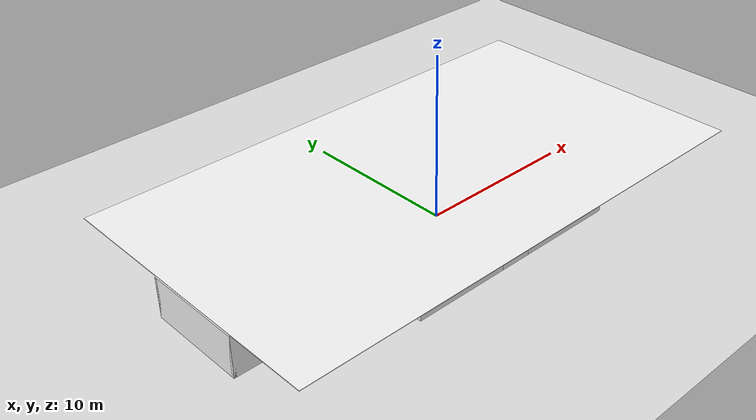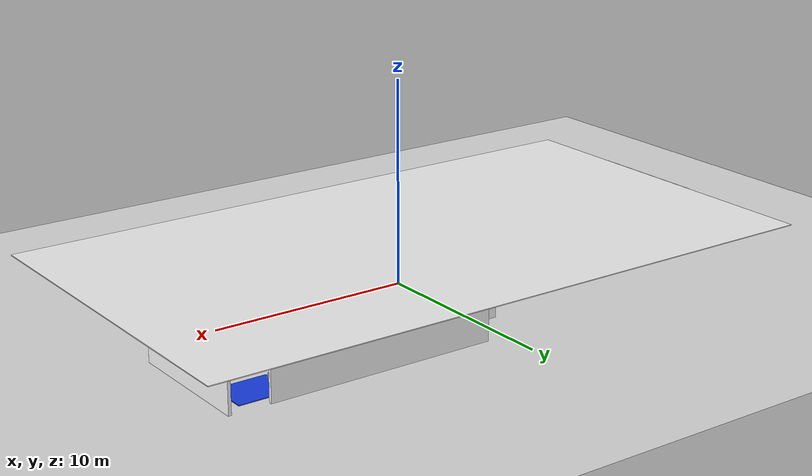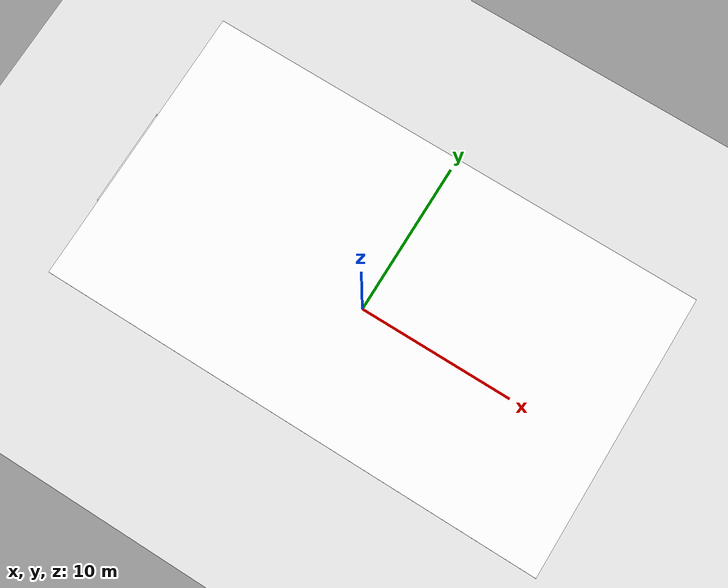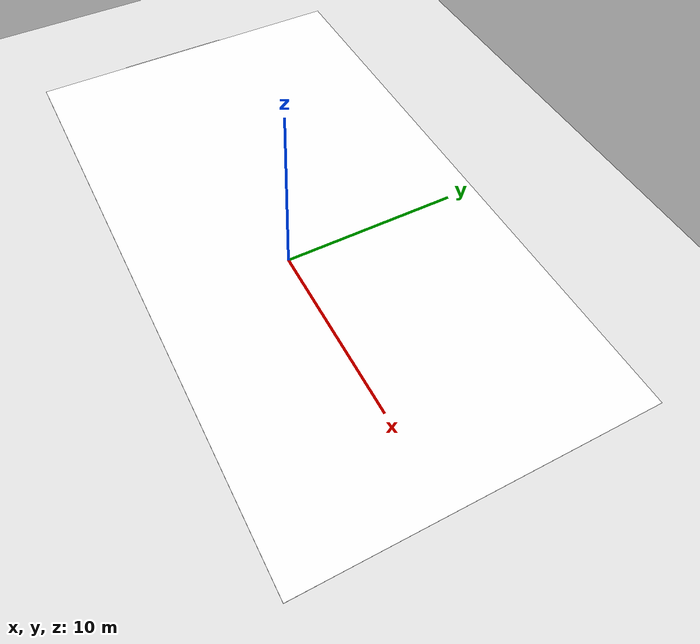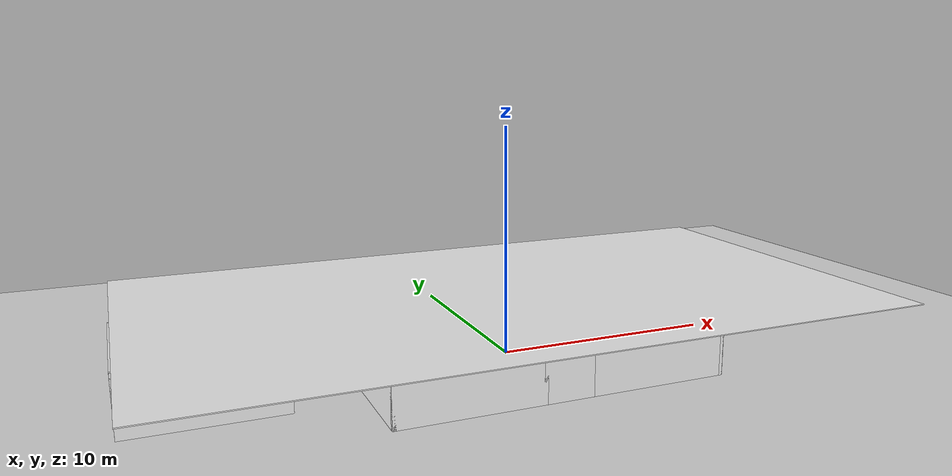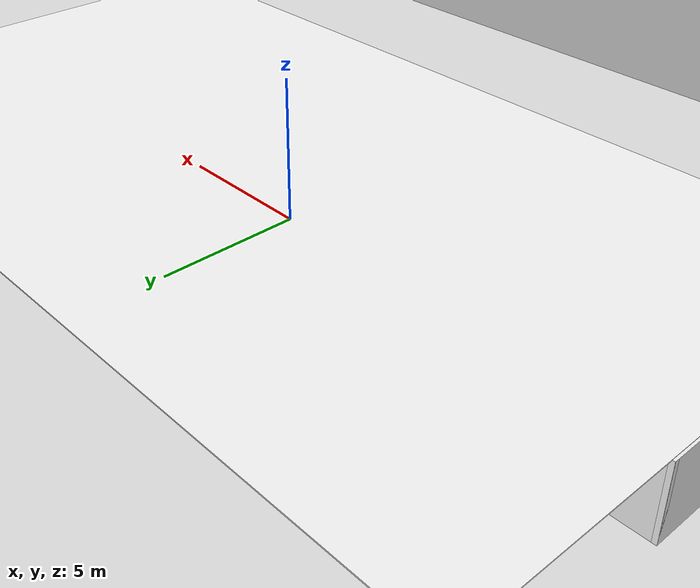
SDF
<?xml version="1.0" ?>
<sdf version="1.6">
  <world name="hospital_world">

    <!-- ═══ PLUGINS ═══ -->
    <plugin filename="ignition-gazebo-physics-system"
            name="ignition::gazebo::systems::Physics"/>
    <plugin filename="ignition-gazebo-user-commands-system"
            name="ignition::gazebo::systems::UserCommands"/>
    <plugin filename="ignition-gazebo-scene-broadcaster-system"
            name="ignition::gazebo::systems::SceneBroadcaster"/>
    <plugin filename="ignition-gazebo-sensors-system"
            name="ignition::gazebo::systems::Sensors">
      <render_engine>ogre2</render_engine>
    </plugin>

    <!-- ═══ LIGHTING ═══ -->
    <light name="sun" type="directional">
      <cast_shadows>true</cast_shadows>
      <pose>0 0 20 0 0 0</pose>
      <diffuse>0.9 0.9 0.88 1</diffuse>
      <specular>0.2 0.2 0.2 1</specular>
      <direction>-0.4 0.1 -0.9</direction>
    </light>
    <light name="light_start" type="point">
      <pose>-13 0 2.8 0 0 0</pose>
      <diffuse>1 1 0.95 1</diffuse>
      <attenuation><range>10</range><linear>0.12</linear></attenuation>
    </light>
    <light name="light_corridor" type="point">
      <pose>-5 0 2.8 0 0 0</pose>
      <diffuse>1 1 0.95 1</diffuse>
      <attenuation><range>12</range><linear>0.10</linear></attenuation>
    </light>
    <light name="light_intersect" type="point">
      <pose>0 0 2.8 0 0 0</pose>
      <diffuse>1 1 0.95 1</diffuse>
      <attenuation><range>10</range><linear>0.12</linear></attenuation>
    </light>
    <light name="light_maze" type="point">
      <pose>6 4.75 2.8 0 0 0</pose>
      <diffuse>1 1 0.92 1</diffuse>
      <attenuation><range>12</range><linear>0.12</linear></attenuation>
    </light>
    <light name="light_goal" type="point">
      <pose>12 6.0 2.8 0 0 0</pose>
      <diffuse>0.9 0.95 1.0 1</diffuse>
      <attenuation><range>8</range><linear>0.15</linear></attenuation>
    </light>

    <!-- ═══ GROUND ═══ -->
    <model name="ground_plane">
      <static>true</static>
      <link name="link">
        <collision name="c">
          <geometry><plane><normal>0 0 1</normal><size>50 30</size></plane></geometry>
        </collision>
        <visual name="v">
          <geometry><plane><normal>0 0 1</normal><size>50 30</size></plane></geometry>
          <material><ambient>0.88 0.88 0.88 1</ambient><diffuse>0.88 0.88 0.88 1</diffuse></material>
        </visual>
      </link>
    </model>

    <model name="sw_west">
      <static>true</static><pose>-16 0 1.25 0 0 0</pose>
      <link name="link">
        <collision name="c"><geometry><box><size>0.15 6.15 2.5</size></box></geometry></collision>
        <visual name="v"><geometry><box><size>0.15 6.15 2.5</size></box></geometry>
          <material><ambient>0.95 0.95 0.95 1</ambient><diffuse>0.95 0.95 0.95 1</diffuse></material>
        </visual>
      </link>
    </model>
    <model name="sw_south">
      <static>true</static><pose>-13 -3 1.25 0 0 0</pose>
      <link name="link">
        <collision name="c"><geometry><box><size>6.15 0.15 2.5</size></box></geometry></collision>
        <visual name="v"><geometry><box><size>6.15 0.15 2.5</size></box></geometry>
          <material><ambient>0.95 0.95 0.95 1</ambient><diffuse>0.95 0.95 0.95 1</diffuse></material>
        </visual>
      </link>
    </model>
    <model name="sw_north">
      <static>true</static><pose>-13 3 1.25 0 0 0</pose>
      <link name="link">
        <collision name="c"><geometry><box><size>6.15 0.15 2.5</size></box></geometry></collision>
        <visual name="v"><geometry><box><size>6.15 0.15 2.5</size></box></geometry>
          <material><ambient>0.95 0.95 0.95 1</ambient><diffuse>0.95 0.95 0.95 1</diffuse></material>
        </visual>
      </link>
    </model>
    <!-- East wall south piece: y(-3 → -0.9), center=-1.95, length=2.1 -->
    <model name="sw_east_south">
      <static>true</static><pose>-10 -1.95 1.25 0 0 0</pose>
      <link name="link">
        <collision name="c"><geometry><box><size>0.15 2.1 2.5</size></box></geometry></collision>
        <visual name="v"><geometry><box><size>0.15 2.1 2.5</size></box></geometry>
          <material><ambient>0.95 0.95 0.95 1</ambient><diffuse>0.95 0.95 0.95 1</diffuse></material>
        </visual>
      </link>
    </model>
    <!-- East wall north piece: y(+0.9 → +3), center=+1.95, length=2.1 -->
    <model name="sw_east_north">
      <static>true</static><pose>-10 1.95 1.25 0 0 0</pose>
      <link name="link">
        <collision name="c"><geometry><box><size>0.15 2.1 2.5</size></box></geometry></collision>
        <visual name="v"><geometry><box><size>0.15 2.1 2.5</size></box></geometry>
          <material><ambient>0.95 0.95 0.95 1</ambient><diffuse>0.95 0.95 0.95 1</diffuse></material>
        </visual>
      </link>
    </model>

    <!-- Hospital bed (south side — out of path) -->
    <model name="hosp_bed">
      <static>true</static><pose>-14 -2.0 0.4 0 0 0</pose>
      <link name="link">
        <collision name="c"><geometry><box><size>1.9 0.85 0.8</size></box></geometry></collision>
        <visual name="v"><geometry><box><size>1.9 0.85 0.8</size></box></geometry>
          <material><ambient>0.82 0.88 1.0 1</ambient><diffuse>0.82 0.88 1.0 1</diffuse></material>
        </visual>
      </link>
    </model>
    <model name="iv_stand">
      <static>true</static><pose>-12.8 -1.7 0.6 0 0 0</pose>
      <link name="link">
        <collision name="c"><geometry><cylinder><radius>0.05</radius><length>1.2</length></cylinder></geometry></collision>
        <visual name="v"><geometry><cylinder><radius>0.05</radius><length>1.2</length></cylinder></geometry>
          <material><ambient>0.7 0.7 0.7 1</ambient><diffuse>0.7 0.7 0.7 1</diffuse></material>
        </visual>
      </link>
    </model>

    <!-- ARUCO ID 0: east wall inside face, robot drives toward it -->
    <model name="aruco_0">
      <static>true</static><pose>-9.93 0 1.2 0 0 0</pose>
      <link name="link">
        <collision name="c"><geometry><box><size>0.04 0.25 0.25</size></box></geometry></collision>
        <visual name="v"><geometry><box><size>0.04 0.25 0.25</size></box></geometry>
          <material><ambient>1 1 1 1</ambient><diffuse>1 1 1 1</diffuse></material>
        </visual>
      </link>
    </model>

    <model name="cw_south">
      <static>true</static><pose>-5 -1.5 1.25 0 0 0</pose>
      <link name="link">
        <collision name="c"><geometry><box><size>10.15 0.15 2.5</size></box></geometry></collision>
        <visual name="v"><geometry><box><size>10.15 0.15 2.5</size></box></geometry>
          <material><ambient>0.95 0.95 0.95 1</ambient><diffuse>0.95 0.95 0.95 1</diffuse></material>
        </visual>
      </link>
    </model>
    <model name="cw_north">
      <static>true</static><pose>-5 1.5 1.25 0 0 0</pose>
      <link name="link">
        <collision name="c"><geometry><box><size>10.15 0.15 2.5</size></box></geometry></collision>
        <visual name="v"><geometry><box><size>10.15 0.15 2.5</size></box></geometry>
          <material><ambient>0.95 0.95 0.95 1</ambient><diffuse>0.95 0.95 0.95 1</diffuse></material>
        </visual>
      </link>
    </model>

    <!-- SIGN 1: FORWARD (cyan) — north wall, faces south toward robot -->
    <model name="sign_forward">
      <static>true</static><pose>-8 1.43 1.5 0 0 0</pose>
      <link name="link">
        <collision name="c"><geometry><box><size>0.45 0.04 0.3</size></box></geometry></collision>
        <visual name="v"><geometry><box><size>0.45 0.04 0.3</size></box></geometry>
          <material><ambient>0.0 0.82 0.82 1</ambient><diffuse>0.0 0.82 0.82 1</diffuse></material>
        </visual>
      </link>
    </model>

    <!-- ARUCO ID 1: north wall, faces south toward robot -->
    <model name="aruco_1">
      <static>true</static><pose>-4 1.43 1.2 0 0 0</pose>
      <link name="link">
        <collision name="c"><geometry><box><size>0.25 0.04 0.25</size></box></geometry></collision>
        <visual name="v"><geometry><box><size>0.25 0.04 0.25</size></box></geometry>
          <material><ambient>1 1 1 1</ambient><diffuse>1 1 1 1</diffuse></material>
        </visual>
      </link>
    </model>

    <!-- Med trolleys as corridor obstacles -->
    <model name="trolley_1">
      <static>true</static><pose>-6.5 0.6 0.45 0 0 0</pose>
      <link name="link">
        <collision name="c"><geometry><box><size>0.65 0.38 0.9</size></box></geometry></collision>
        <visual name="v"><geometry><box><size>0.65 0.38 0.9</size></box></geometry>
          <material><ambient>0.72 0.72 0.86 1</ambient><diffuse>0.72 0.72 0.86 1</diffuse></material>
        </visual>
      </link>
    </model>
    <model name="trolley_2">
      <static>true</static><pose>-2.5 -0.55 0.45 0 0 0.4</pose>
      <link name="link">
        <collision name="c"><geometry><box><size>0.65 0.38 0.9</size></box></geometry></collision>
        <visual name="v"><geometry><box><size>0.65 0.38 0.9</size></box></geometry>
          <material><ambient>0.72 0.72 0.86 1</ambient><diffuse>0.72 0.72 0.86 1</diffuse></material>
        </visual>
      </link>
    </model>

    <!-- West wall south: y(-6 → -1.5), center=-3.75, length=4.5 -->
    <model name="iw_west_south">
      <static>true</static><pose>-1 -3.75 1.25 0 0 0</pose>
      <link name="link">
        <collision name="c"><geometry><box><size>0.15 4.5 2.5</size></box></geometry></collision>
        <visual name="v"><geometry><box><size>0.15 4.5 2.5</size></box></geometry>
          <material><ambient>0.95 0.95 0.95 1</ambient><diffuse>0.95 0.95 0.95 1</diffuse></material>
        </visual>
      </link>
    </model>
    <!-- West wall north: y(+1.5 → +6), center=+3.75, length=4.5 -->
    <model name="iw_west_north">
      <static>true</static><pose>-1 3.75 1.25 0 0 0</pose>
      <link name="link">
        <collision name="c"><geometry><box><size>0.15 4.5 2.5</size></box></geometry></collision>
        <visual name="v"><geometry><box><size>0.15 4.5 2.5</size></box></geometry>
          <material><ambient>0.95 0.95 0.95 1</ambient><diffuse>0.95 0.95 0.95 1</diffuse></material>
        </visual>
      </link>
    </model>
    <!-- East wall south only (traps are closed): y(-6 → -1.5) -->
    <model name="iw_east_south">
      <static>true</static><pose>1 -3.75 1.25 0 0 0</pose>
      <link name="link">
        <collision name="c"><geometry><box><size>0.15 4.5 2.5</size></box></geometry></collision>
        <visual name="v"><geometry><box><size>0.15 4.5 2.5</size></box></geometry>
          <material><ambient>0.95 0.95 0.95 1</ambient><diffuse>0.95 0.95 0.95 1</diffuse></material>
        </visual>
      </link>
    </model>
    <!-- North cap -->
    <model name="iw_north">
      <static>true</static><pose>0 6 1.25 0 0 0</pose>
      <link name="link">
        <collision name="c"><geometry><box><size>2.15 0.15 2.5</size></box></geometry></collision>
        <visual name="v"><geometry><box><size>2.15 0.15 2.5</size></box></geometry>
          <material><ambient>0.95 0.95 0.95 1</ambient><diffuse>0.95 0.95 0.95 1</diffuse></material>
        </visual>
      </link>
    </model>
    <!-- South cap -->
    <model name="iw_south">
      <static>true</static><pose>0 -6 1.25 0 0 0</pose>
      <link name="link">
        <collision name="c"><geometry><box><size>2.15 0.15 2.5</size></box></geometry></collision>
        <visual name="v"><geometry><box><size>2.15 0.15 2.5</size></box></geometry>
          <material><ambient>0.95 0.95 0.95 1</ambient><diffuse>0.95 0.95 0.95 1</diffuse></material>
        </visual>
      </link>
    </model>

    <!-- SIGN 2: LEFT (yellow) — west wall north section, faces east toward robot -->
    <model name="sign_left">
      <static>true</static><pose>-0.93 4.0 1.5 0 0 0</pose>
      <link name="link">
        <collision name="c"><geometry><box><size>0.04 0.45 0.3</size></box></geometry></collision>
        <visual name="v"><geometry><box><size>0.04 0.45 0.3</size></box></geometry>
          <material><ambient>0.95 0.85 0.0 1</ambient><diffuse>0.95 0.85 0.0 1</diffuse></material>
        </visual>
      </link>
    </model>

    <!-- SIGN 3: RIGHT misleading (orange) — west wall south section, faces east -->
    <model name="sign_right_mislead">
      <static>true</static><pose>-0.93 -3.0 1.5 0 0 0</pose>
      <link name="link">
        <collision name="c"><geometry><box><size>0.04 0.45 0.3</size></box></geometry></collision>
        <visual name="v"><geometry><box><size>0.04 0.45 0.3</size></box></geometry>
          <material><ambient>0.95 0.50 0.0 1</ambient><diffuse>0.95 0.50 0.0 1</diffuse></material>
        </visual>
      </link>
    </model>

    <model name="lw_west">
      <static>true</static><pose>-7 -3.75 1.25 0 0 0</pose>
      <link name="link">
        <collision name="c"><geometry><box><size>0.15 4.65 2.5</size></box></geometry></collision>
        <visual name="v"><geometry><box><size>0.15 4.65 2.5</size></box></geometry>
          <material><ambient>0.95 0.95 0.95 1</ambient><diffuse>0.95 0.95 0.95 1</diffuse></material>
        </visual>
      </link>
    </model>
    <model name="lw_south">
      <static>true</static><pose>-4 -6 1.25 0 0 0</pose>
      <link name="link">
        <collision name="c"><geometry><box><size>6.15 0.15 2.5</size></box></geometry></collision>
        <visual name="v"><geometry><box><size>6.15 0.15 2.5</size></box></geometry>
          <material><ambient>0.95 0.95 0.95 1</ambient><diffuse>0.95 0.95 0.95 1</diffuse></material>
        </visual>
      </link>
    </model>
    <!-- Divider: x(-7 → -3), y=-4, creates two 1.5m-wide channels -->
    <model name="loop_divider">
      <static>true</static><pose>-5 -4 1.25 0 0 0</pose>
      <link name="link">
        <collision name="c"><geometry><box><size>4.0 0.15 2.5</size></box></geometry></collision>
        <visual name="v"><geometry><box><size>4.0 0.15 2.5</size></box></geometry>
          <material><ambient>0.92 0.92 0.92 1</ambient><diffuse>0.92 0.92 0.92 1</diffuse></material>
        </visual>
      </link>
    </model>

    <model name="fg_east">
      <static>true</static><pose>7 -3.75 1.25 0 0 0</pose>
      <link name="link">
        <collision name="c"><geometry><box><size>0.15 4.65 2.5</size></box></geometry></collision>
        <visual name="v"><geometry><box><size>0.15 4.65 2.5</size></box></geometry>
          <material><ambient>0.95 0.95 0.95 1</ambient><diffuse>0.95 0.95 0.95 1</diffuse></material>
        </visual>
      </link>
    </model>
    <model name="fg_south">
      <static>true</static><pose>4 -6 1.25 0 0 0</pose>
      <link name="link">
        <collision name="c"><geometry><box><size>6.15 0.15 2.5</size></box></geometry></collision>
        <visual name="v"><geometry><box><size>6.15 0.15 2.5</size></box></geometry>
          <material><ambient>0.95 0.95 0.95 1</ambient><diffuse>0.95 0.95 0.95 1</diffuse></material>
        </visual>
      </link>
    </model>
    <!-- False goal floor marker (GREEN = wrong) -->
    <model name="false_goal_floor">
      <static>true</static><pose>4 -3.75 0.02 0 0 0</pose>
      <link name="link">
        <visual name="v"><geometry><box><size>2.0 2.0 0.04</size></box></geometry>
          <material><ambient>0.15 0.75 0.15 1</ambient><diffuse>0.15 0.75 0.15 1</diffuse></material>
        </visual>
      </link>
    </model>

    <!-- North boundary -->
    <model name="mw_north">
      <static>true</static><pose>6.5 8 1.25 0 0 0</pose>
      <link name="link">
        <collision name="c"><geometry><box><size>11.15 0.15 2.5</size></box></geometry></collision>
        <visual name="v"><geometry><box><size>11.15 0.15 2.5</size></box></geometry>
          <material><ambient>0.95 0.95 0.95 1</ambient><diffuse>0.95 0.95 0.95 1</diffuse></material>
        </visual>
      </link>
    </model>
    <!-- South boundary: x(0 → 12) at y=+1.5 (extends corridor north wall east) -->
    <model name="mw_south_ext">
      <static>true</static><pose>6 1.5 1.25 0 0 0</pose>
      <link name="link">
        <collision name="c"><geometry><box><size>12.15 0.15 2.5</size></box></geometry></collision>
        <visual name="v"><geometry><box><size>12.15 0.15 2.5</size></box></geometry>
          <material><ambient>0.95 0.95 0.95 1</ambient><diffuse>0.95 0.95 0.95 1</diffuse></material>
        </visual>
      </link>
    </model>

    <!-- BAFFLE A: x=4, y(1.5 → 6.2), center=3.85, length=4.7 -->
    <model name="baffle_a">
      <static>true</static><pose>4 3.85 1.25 0 0 0</pose>
      <link name="link">
        <collision name="c"><geometry><box><size>0.15 4.7 2.5</size></box></geometry></collision>
        <visual name="v"><geometry><box><size>0.15 4.7 2.5</size></box></geometry>
          <material><ambient>0.9 0.9 0.9 1</ambient><diffuse>0.9 0.9 0.9 1</diffuse></material>
        </visual>
      </link>
    </model>

    <!-- ARUCO ID 2: east face of baffle-A, at y=3.0, z=1.2
         Robot heading east walks straight into baffle-A — marker is dead ahead -->
    <model name="aruco_2">
      <static>true</static><pose>4.04 3.0 1.2 0 0 0</pose>
      <link name="link">
        <collision name="c"><geometry><box><size>0.04 0.25 0.25</size></box></geometry></collision>
        <visual name="v"><geometry><box><size>0.04 0.25 0.25</size></box></geometry>
          <material><ambient>1 1 1 1</ambient><diffuse>1 1 1 1</diffuse></material>
        </visual>
      </link>
    </model>

    <!-- SIGN 4: INPLACE ROTATION (magenta) — east face of baffle-A at y=5.5
         Above ArUco — tells robot to spin and find the gap at the top -->
    <model name="sign_rotate">
      <static>true</static><pose>4.04 5.5 1.5 0 0 0</pose>
      <link name="link">
        <collision name="c"><geometry><box><size>0.04 0.4 0.3</size></box></geometry></collision>
        <visual name="v"><geometry><box><size>0.04 0.4 0.3</size></box></geometry>
          <material><ambient>0.85 0.0 0.85 1</ambient><diffuse>0.85 0.0 0.85 1</diffuse></material>
        </visual>
      </link>
    </model>

    <!-- BAFFLE B: x=7, y(3.3 → 8.0), center=5.65, length=4.7 -->
    <model name="baffle_b">
      <static>true</static><pose>7 5.65 1.25 0 0 0</pose>
      <link name="link">
        <collision name="c"><geometry><box><size>0.15 4.7 2.5</size></box></geometry></collision>
        <visual name="v"><geometry><box><size>0.15 4.7 2.5</size></box></geometry>
          <material><ambient>0.9 0.9 0.9 1</ambient><diffuse>0.9 0.9 0.9 1</diffuse></material>
        </visual>
      </link>
    </model>

    <!-- BAFFLE C: x=10, y(1.5 → 5.5), center=3.5, length=4.0 -->
    <model name="baffle_c">
      <static>true</static><pose>10 3.5 1.25 0 0 0</pose>
      <link name="link">
        <collision name="c"><geometry><box><size>0.15 4.0 2.5</size></box></geometry></collision>
        <visual name="v"><geometry><box><size>0.15 4.0 2.5</size></box></geometry>
          <material><ambient>0.9 0.9 0.9 1</ambient><diffuse>0.9 0.9 0.9 1</diffuse></material>
        </visual>
      </link>
    </model>

    <!-- SIGN 5: STOP (red) — west face of baffle-C, at y=2.5 (dead-end side)
         Robot coming east below baffle-C sees this — dead end, must recover -->
    <model name="sign_stop">
      <static>true</static><pose>9.93 2.5 1.5 0 0 0</pose>
      <link name="link">
        <collision name="c"><geometry><box><size>0.04 0.4 0.3</size></box></geometry></collision>
        <visual name="v"><geometry><box><size>0.04 0.4 0.3</size></box></geometry>
          <material><ambient>0.92 0.1 0.1 1</ambient><diffuse>0.92 0.1 0.1 1</diffuse></material>
        </visual>
      </link>
    </model>

    <!-- SIGN 6: GOAL (blue) — east face of baffle-C at y=6.5 (gap side)
         Robot going north through gap sees this — confirms go east to goal -->
    <model name="sign_goal">
      <static>true</static><pose>10.04 6.5 1.5 0 0 0</pose>
      <link name="link">
        <collision name="c"><geometry><box><size>0.04 0.4 0.3</size></box></geometry></collision>
        <visual name="v"><geometry><box><size>0.04 0.4 0.3</size></box></geometry>
          <material><ambient>0.1 0.25 0.92 1</ambient><diffuse>0.1 0.25 0.92 1</diffuse></material>
        </visual>
      </link>
    </model>

    <!-- Maze scatter obstacles -->
    <model name="maze_box_1">
      <static>true</static><pose>5.5 7.0 0.3 0 0 0.3</pose>
      <link name="link">
        <collision name="c"><geometry><box><size>0.45 0.45 0.6</size></box></geometry></collision>
        <visual name="v"><geometry><box><size>0.45 0.45 0.6</size></box></geometry>
          <material><ambient>0.4 0.4 0.4 1</ambient><diffuse>0.4 0.4 0.4 1</diffuse></material>
        </visual>
      </link>
    </model>
    <model name="maze_box_2">
      <static>true</static><pose>8.5 2.3 0.3 0 0 0.6</pose>
      <link name="link">
        <collision name="c"><geometry><box><size>0.45 0.45 0.6</size></box></geometry></collision>
        <visual name="v"><geometry><box><size>0.45 0.45 0.6</size></box></geometry>
          <material><ambient>0.4 0.4 0.4 1</ambient><diffuse>0.4 0.4 0.4 1</diffuse></material>
        </visual>
      </link>
    </model>

    <model name="gw_east">
      <static>true</static><pose>14 4.75 1.25 0 0 0</pose>
      <link name="link">
        <collision name="c"><geometry><box><size>0.15 6.65 2.5</size></box></geometry></collision>
        <visual name="v"><geometry><box><size>0.15 6.65 2.5</size></box></geometry>
          <material><ambient>0.95 0.95 0.95 1</ambient><diffuse>0.95 0.95 0.95 1</diffuse></material>
        </visual>
      </link>
    </model>

    <!-- True goal floor (BLUE = correct) -->
    <model name="true_goal_floor">
      <static>true</static><pose>12 6.5 0.02 0 0 0</pose>
      <link name="link">
        <visual name="v"><geometry><box><size>2.5 2.0 0.04</size></box></geometry>
          <material><ambient>0.1 0.25 0.92 1</ambient><diffuse>0.1 0.25 0.92 1</diffuse></material>
        </visual>
      </link>
    </model>

    <!-- ARUCO ID 3: south face of north wall (y=7.93), robot enters from south and faces it -->
    <model name="aruco_3">
      <static>true</static><pose>12 7.93 1.2 0 0 0</pose>
      <link name="link">
        <collision name="c"><geometry><box><size>0.25 0.04 0.25</size></box></geometry></collision>
        <visual name="v"><geometry><box><size>0.25 0.04 0.25</size></box></geometry>
          <material><ambient>1 1 1 1</ambient><diffuse>1 1 1 1</diffuse></material>
        </visual>
      </link>
    </model>

    <!-- ═══ CEILING (visual only) ═══ -->
    <model name="ceiling">
      <static>true</static><pose>0 1 2.5 0 0 0</pose>
      <link name="link">
        <visual name="v">
          <geometry><box><size>32 18 0.04</size></box></geometry>
          <material><ambient>0.97 0.97 0.97 1</ambient><diffuse>0.97 0.97 0.97 1</diffuse></material>
        </visual>
      </link>
    </model>

  </world>
</sdf>
